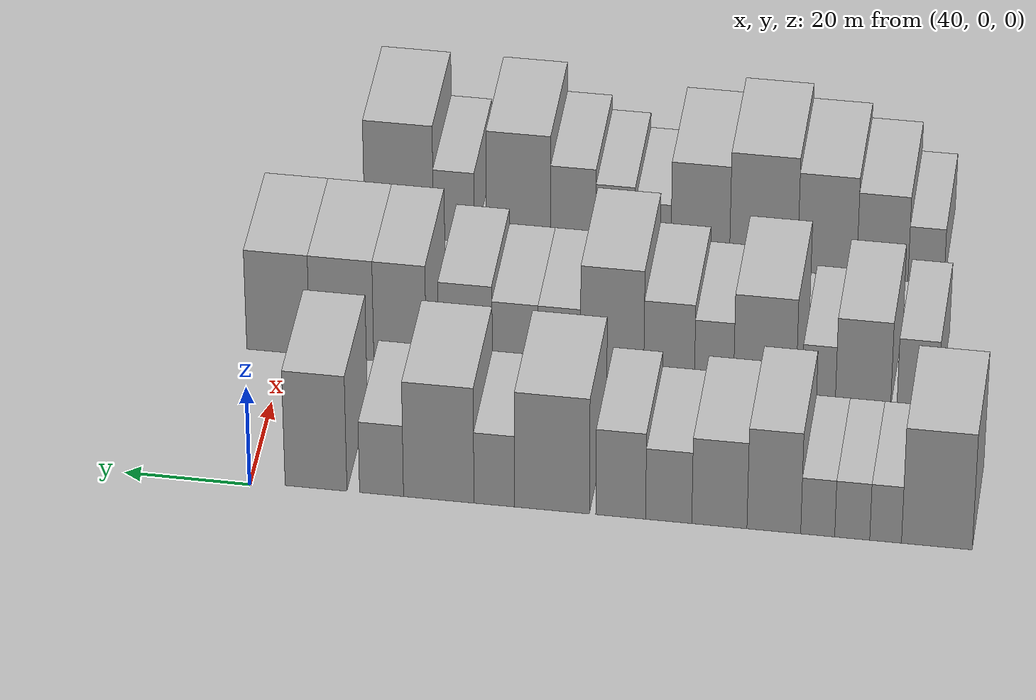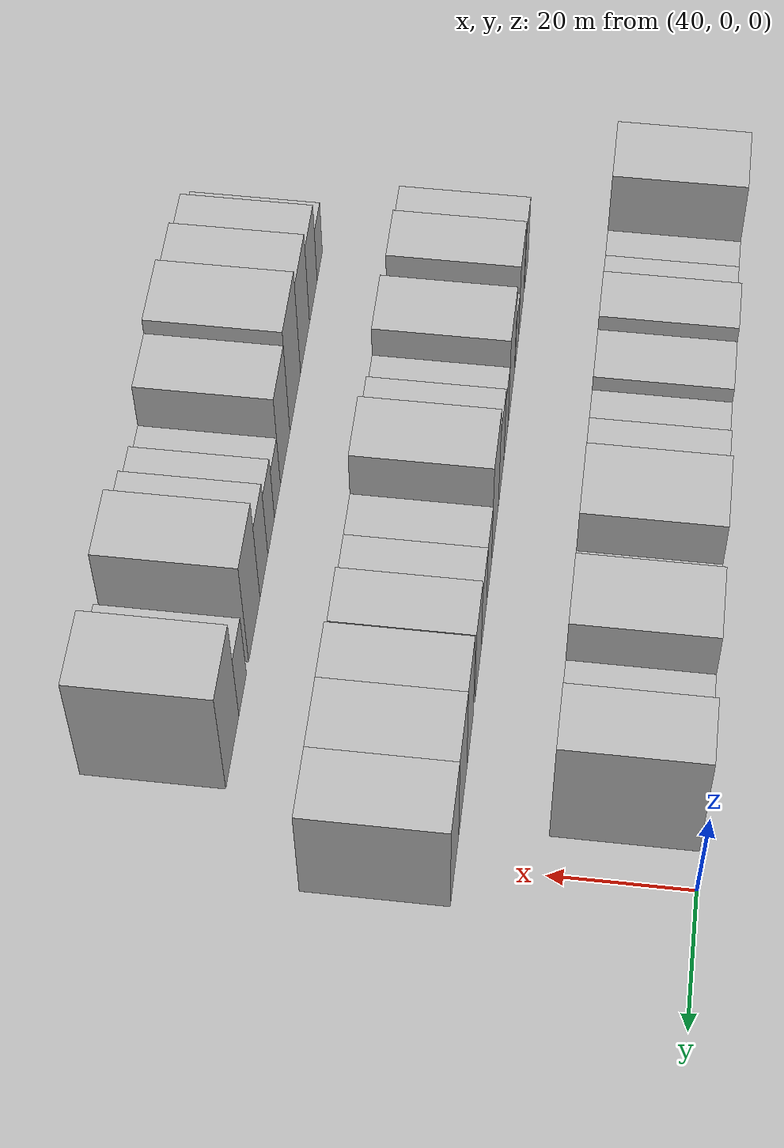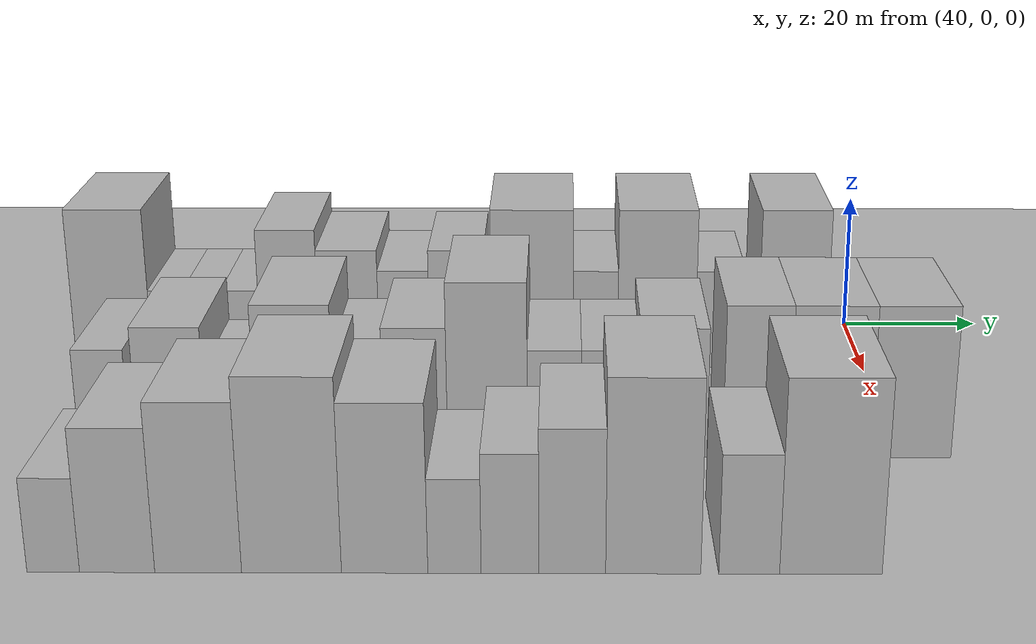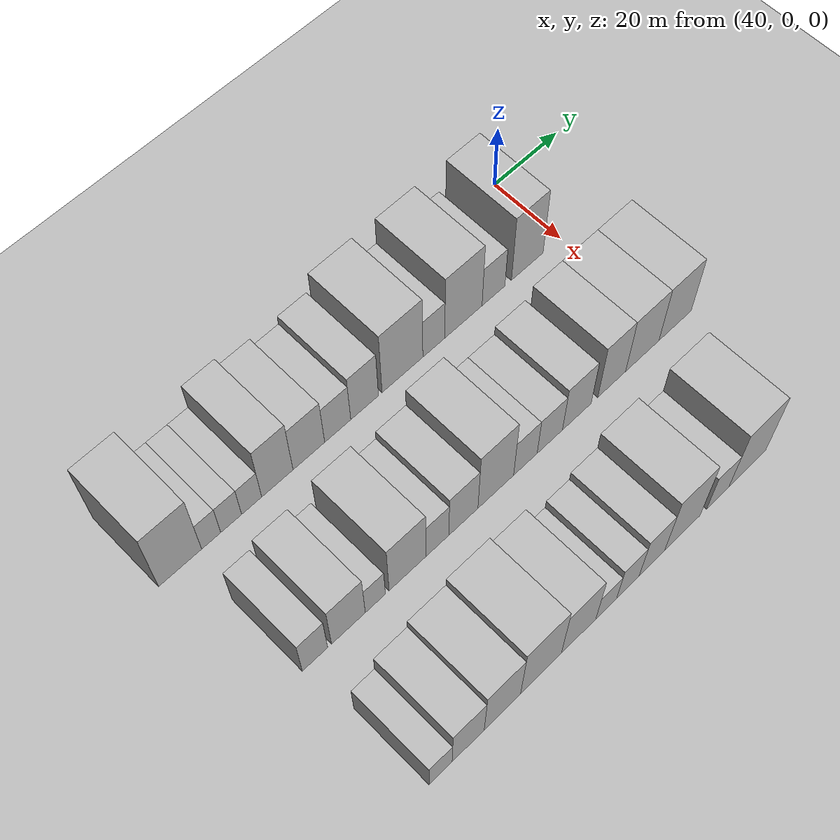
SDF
<sdf version="1.6">
 <world name="default">
  <include><name>ground_plane_1</name><uri>model://HANNAS_ground_plane</uri></include>
  <include>
   <name>ground_plane_2</name>
   <uri>model://HANNAS_ground_plane</uri>
   <pose>100 0 0  0 0 0</pose>
  </include>
  <model name="building_53">
   <static>1</static>
   <pose>50.0000 -108.2480 0 0.000000 0.000000 0.000000</pose>
   <link name="link">
    <pose>0 0 12.00 0 0 0</pose>
    <collision name="collision"><geometry><box><size>20.0000 11.0234 24.0000</size></box></geometry></collision>
    <visual name="visual">
     <cast_shadows>0</cast_shadows>
     <geometry><box><size>20.0000 11.0234 24.0000</size></box></geometry>
     <material>
      <script>
       <uri>model://HANNAS_wall/materials/scripts</uri>
       <uri>model://HANNAS_wall/materials/textures</uri>
       <name>vrc/HANNAS_wall</name>
      </script>
     </material>
    </visual>
   </link>
  </model>
  <model name="building_54">
   <static>1</static>
   <pose>50.0000 -100.2586 0 0.000000 0.000000 0.000000</pose>
   <link name="link">
    <pose>0 0 6.00 0 0 0</pose>
    <collision name="collision"><geometry><box><size>20.0000 4.9554 12.0000</size></box></geometry></collision>
    <visual name="visual">
     <cast_shadows>0</cast_shadows>
     <geometry><box><size>20.0000 4.9554 12.0000</size></box></geometry>
     <material>
      <script>
       <uri>model://HANNAS_wall/materials/scripts</uri>
       <uri>model://HANNAS_wall/materials/textures</uri>
       <name>vrc/HANNAS_wall</name>
      </script>
     </material>
    </visual>
   </link>
  </model>
  <model name="building_55">
   <static>1</static>
   <pose>50.0000 -95.0458 0 0.000000 0.000000 0.000000</pose>
   <link name="link">
    <pose>0 0 6.00 0 0 0</pose>
    <collision name="collision"><geometry><box><size>20.0000 5.4702 12.0000</size></box></geometry></collision>
    <visual name="visual">
     <cast_shadows>0</cast_shadows>
     <geometry><box><size>20.0000 5.4702 12.0000</size></box></geometry>
     <material>
      <script>
       <uri>model://HANNAS_wall/materials/scripts</uri>
       <uri>model://HANNAS_wall/materials/textures</uri>
       <name>vrc/HANNAS_wall</name>
      </script>
     </material>
    </visual>
   </link>
  </model>
  <model name="building_56">
   <static>1</static>
   <pose>50.0000 -89.6483 0 0.000000 0.000000 0.000000</pose>
   <link name="link">
    <pose>0 0 6.00 0 0 0</pose>
    <collision name="collision"><geometry><box><size>20.0000 5.3247 12.0000</size></box></geometry></collision>
    <visual name="visual">
     <cast_shadows>0</cast_shadows>
     <geometry><box><size>20.0000 5.3247 12.0000</size></box></geometry>
     <material>
      <script>
       <uri>model://HANNAS_wall/materials/scripts</uri>
       <uri>model://HANNAS_wall/materials/textures</uri>
       <name>vrc/HANNAS_wall</name>
      </script>
     </material>
    </visual>
   </link>
  </model>
  <model name="building_57">
   <static>1</static>
   <pose>50.0000 -82.7747 0 0.000000 0.000000 0.000000</pose>
   <link name="link">
    <pose>0 0 10.50 0 0 0</pose>
    <collision name="collision"><geometry><box><size>20.0000 8.4225 21.0000</size></box></geometry></collision>
    <visual name="visual">
     <cast_shadows>0</cast_shadows>
     <geometry><box><size>20.0000 8.4225 21.0000</size></box></geometry>
     <material>
      <script>
       <uri>model://HANNAS_wall/materials/scripts</uri>
       <uri>model://HANNAS_wall/materials/textures</uri>
       <name>vrc/HANNAS_wall</name>
      </script>
     </material>
    </visual>
   </link>
  </model>
  <model name="building_58">
   <static>1</static>
   <pose>50.0000 -74.2326 0 0.000000 0.000000 0.000000</pose>
   <link name="link">
    <pose>0 0 9.00 0 0 0</pose>
    <collision name="collision"><geometry><box><size>20.0000 8.6617 18.0000</size></box></geometry></collision>
    <visual name="visual">
     <cast_shadows>0</cast_shadows>
     <geometry><box><size>20.0000 8.6617 18.0000</size></box></geometry>
     <material>
      <script>
       <uri>model://HANNAS_wall/materials/scripts</uri>
       <uri>model://HANNAS_wall/materials/textures</uri>
       <name>vrc/HANNAS_wall</name>
      </script>
     </material>
    </visual>
   </link>
  </model>
  <model name="building_59">
   <static>1</static>
   <pose>50.0000 -66.2687 0 0.000000 0.000000 0.000000</pose>
   <link name="link">
    <pose>0 0 7.50 0 0 0</pose>
    <collision name="collision"><geometry><box><size>20.0000 7.2660 15.0000</size></box></geometry></collision>
    <visual name="visual">
     <cast_shadows>0</cast_shadows>
     <geometry><box><size>20.0000 7.2660 15.0000</size></box></geometry>
     <material>
      <script>
       <uri>model://HANNAS_wall/materials/scripts</uri>
       <uri>model://HANNAS_wall/materials/textures</uri>
       <name>vrc/HANNAS_wall</name>
      </script>
     </material>
    </visual>
   </link>
  </model>
  <model name="building_60">
   <static>1</static>
   <pose>50.0000 -58.7172 0 0.000000 0.000000 0.000000</pose>
   <link name="link">
    <pose>0 0 9.00 0 0 0</pose>
    <collision name="collision"><geometry><box><size>20.0000 7.8371 18.0000</size></box></geometry></collision>
    <visual name="visual">
     <cast_shadows>0</cast_shadows>
     <geometry><box><size>20.0000 7.8371 18.0000</size></box></geometry>
     <material>
      <script>
       <uri>model://HANNAS_wall/materials/scripts</uri>
       <uri>model://HANNAS_wall/materials/textures</uri>
       <name>vrc/HANNAS_wall</name>
      </script>
     </material>
    </visual>
   </link>
  </model>
  <model name="building_61">
   <static>1</static>
   <pose>50.0000 -47.9027 0 0.000000 0.000000 0.000000</pose>
   <link name="link">
    <pose>0 0 12.00 0 0 0</pose>
    <collision name="collision"><geometry><box><size>20.0000 11.7918 24.0000</size></box></geometry></collision>
    <visual name="visual">
     <cast_shadows>0</cast_shadows>
     <geometry><box><size>20.0000 11.7918 24.0000</size></box></geometry>
     <material>
      <script>
       <uri>model://HANNAS_wall/materials/scripts</uri>
       <uri>model://HANNAS_wall/materials/textures</uri>
       <name>vrc/HANNAS_wall</name>
      </script>
     </material>
    </visual>
   </link>
  </model>
  <model name="building_62">
   <static>1</static>
   <pose>50.0000 -38.7945 0 0.000000 0.000000 0.000000</pose>
   <link name="link">
    <pose>0 0 7.50 0 0 0</pose>
    <collision name="collision"><geometry><box><size>20.0000 6.4246 15.0000</size></box></geometry></collision>
    <visual name="visual">
     <cast_shadows>0</cast_shadows>
     <geometry><box><size>20.0000 6.4246 15.0000</size></box></geometry>
     <material>
      <script>
       <uri>model://HANNAS_wall/materials/scripts</uri>
       <uri>model://HANNAS_wall/materials/textures</uri>
       <name>vrc/HANNAS_wall</name>
      </script>
     </material>
    </visual>
   </link>
  </model>
  <model name="building_63">
   <static>1</static>
   <pose>50.0000 -29.9969 0 0.000000 0.000000 0.000000</pose>
   <link name="link">
    <pose>0 0 12.00 0 0 0</pose>
    <collision name="collision"><geometry><box><size>20.0000 11.1705 24.0000</size></box></geometry></collision>
    <visual name="visual">
     <cast_shadows>0</cast_shadows>
     <geometry><box><size>20.0000 11.1705 24.0000</size></box></geometry>
     <material>
      <script>
       <uri>model://HANNAS_wall/materials/scripts</uri>
       <uri>model://HANNAS_wall/materials/textures</uri>
       <name>vrc/HANNAS_wall</name>
      </script>
     </material>
    </visual>
   </link>
  </model>
  <model name="building_64">
   <static>1</static>
   <pose>50.0000 -20.9240 0 0.000000 0.000000 0.000000</pose>
   <link name="link">
    <pose>0 0 7.50 0 0 0</pose>
    <collision name="collision"><geometry><box><size>20.0000 6.9754 15.0000</size></box></geometry></collision>
    <visual name="visual">
     <cast_shadows>0</cast_shadows>
     <geometry><box><size>20.0000 6.9754 15.0000</size></box></geometry>
     <material>
      <script>
       <uri>model://HANNAS_wall/materials/scripts</uri>
       <uri>model://HANNAS_wall/materials/textures</uri>
       <name>vrc/HANNAS_wall</name>
      </script>
     </material>
    </visual>
   </link>
  </model>
  <model name="building_65">
   <static>1</static>
   <pose>50.0000 -10.5199 0 0.000000 0.000000 0.000000</pose>
   <link name="link">
    <pose>0 0 12.00 0 0 0</pose>
    <collision name="collision"><geometry><box><size>20.0000 9.8328 24.0000</size></box></geometry></collision>
    <visual name="visual">
     <cast_shadows>0</cast_shadows>
     <geometry><box><size>20.0000 9.8328 24.0000</size></box></geometry>
     <material>
      <script>
       <uri>model://HANNAS_wall/materials/scripts</uri>
       <uri>model://HANNAS_wall/materials/textures</uri>
       <name>vrc/HANNAS_wall</name>
      </script>
     </material>
    </visual>
   </link>
  </model>
  <model name="building_182">
   <static>1</static>
   <pose>82.0000 -102.0957 0 0.000000 0.000000 0.000000</pose>
   <link name="link">
    <pose>0 0 7.50 0 0 0</pose>
    <collision name="collision"><geometry><box><size>20.0000 6.5473 15.0000</size></box></geometry></collision>
    <visual name="visual">
     <cast_shadows>0</cast_shadows>
     <geometry><box><size>20.0000 6.5473 15.0000</size></box></geometry>
     <material>
      <script>
       <uri>model://HANNAS_wall/materials/scripts</uri>
       <uri>model://HANNAS_wall/materials/textures</uri>
       <name>vrc/HANNAS_wall</name>
      </script>
     </material>
    </visual>
   </link>
  </model>
  <model name="building_183">
   <static>1</static>
   <pose>82.0000 -93.3985 0 0.000000 0.000000 0.000000</pose>
   <link name="link">
    <pose>0 0 9.00 0 0 0</pose>
    <collision name="collision"><geometry><box><size>20.0000 8.8470 18.0000</size></box></geometry></collision>
    <visual name="visual">
     <cast_shadows>0</cast_shadows>
     <geometry><box><size>20.0000 8.8470 18.0000</size></box></geometry>
     <material>
      <script>
       <uri>model://HANNAS_wall/materials/scripts</uri>
       <uri>model://HANNAS_wall/materials/textures</uri>
       <name>vrc/HANNAS_wall</name>
      </script>
     </material>
    </visual>
   </link>
  </model>
  <model name="building_184">
   <static>1</static>
   <pose>82.0000 -86.3039 0 0.000000 0.000000 0.000000</pose>
   <link name="link">
    <pose>0 0 6.00 0 0 0</pose>
    <collision name="collision"><geometry><box><size>20.0000 5.3422 12.0000</size></box></geometry></collision>
    <visual name="visual">
     <cast_shadows>0</cast_shadows>
     <geometry><box><size>20.0000 5.3422 12.0000</size></box></geometry>
     <material>
      <script>
       <uri>model://HANNAS_wall/materials/scripts</uri>
       <uri>model://HANNAS_wall/materials/textures</uri>
       <name>vrc/HANNAS_wall</name>
      </script>
     </material>
    </visual>
   </link>
  </model>
  <model name="building_185">
   <static>1</static>
   <pose>82.0000 -77.6232 0 0.000000 0.000000 0.000000</pose>
   <link name="link">
    <pose>0 0 10.50 0 0 0</pose>
    <collision name="collision"><geometry><box><size>20.0000 10.0193 21.0000</size></box></geometry></collision>
    <visual name="visual">
     <cast_shadows>0</cast_shadows>
     <geometry><box><size>20.0000 10.0193 21.0000</size></box></geometry>
     <material>
      <script>
       <uri>model://HANNAS_wall/materials/scripts</uri>
       <uri>model://HANNAS_wall/materials/textures</uri>
       <name>vrc/HANNAS_wall</name>
      </script>
     </material>
    </visual>
   </link>
  </model>
  <model name="building_186">
   <static>1</static>
   <pose>82.0000 -69.4738 0 0.000000 0.000000 0.000000</pose>
   <link name="link">
    <pose>0 0 7.50 0 0 0</pose>
    <collision name="collision"><geometry><box><size>20.0000 6.2795 15.0000</size></box></geometry></collision>
    <visual name="visual">
     <cast_shadows>0</cast_shadows>
     <geometry><box><size>20.0000 6.2795 15.0000</size></box></geometry>
     <material>
      <script>
       <uri>model://HANNAS_wall/materials/scripts</uri>
       <uri>model://HANNAS_wall/materials/textures</uri>
       <name>vrc/HANNAS_wall</name>
      </script>
     </material>
    </visual>
   </link>
  </model>
  <model name="building_187">
   <static>1</static>
   <pose>82.0000 -62.2552 0 0.000000 0.000000 0.000000</pose>
   <link name="link">
    <pose>0 0 9.00 0 0 0</pose>
    <collision name="collision"><geometry><box><size>20.0000 8.1578 18.0000</size></box></geometry></collision>
    <visual name="visual">
     <cast_shadows>0</cast_shadows>
     <geometry><box><size>20.0000 8.1578 18.0000</size></box></geometry>
     <material>
      <script>
       <uri>model://HANNAS_wall/materials/scripts</uri>
       <uri>model://HANNAS_wall/materials/textures</uri>
       <name>vrc/HANNAS_wall</name>
      </script>
     </material>
    </visual>
   </link>
  </model>
  <model name="building_188">
   <static>1</static>
   <pose>82.0000 -53.0809 0 0.000000 0.000000 0.000000</pose>
   <link name="link">
    <pose>0 0 12.00 0 0 0</pose>
    <collision name="collision"><geometry><box><size>20.0000 10.1907 24.0000</size></box></geometry></collision>
    <visual name="visual">
     <cast_shadows>0</cast_shadows>
     <geometry><box><size>20.0000 10.1907 24.0000</size></box></geometry>
     <material>
      <script>
       <uri>model://HANNAS_wall/materials/scripts</uri>
       <uri>model://HANNAS_wall/materials/textures</uri>
       <name>vrc/HANNAS_wall</name>
      </script>
     </material>
    </visual>
   </link>
  </model>
  <model name="building_189">
   <static>1</static>
   <pose>82.0000 -44.5590 0 0.000000 0.000000 0.000000</pose>
   <link name="link">
    <pose>0 0 7.50 0 0 0</pose>
    <collision name="collision"><geometry><box><size>20.0000 6.8531 15.0000</size></box></geometry></collision>
    <visual name="visual">
     <cast_shadows>0</cast_shadows>
     <geometry><box><size>20.0000 6.8531 15.0000</size></box></geometry>
     <material>
      <script>
       <uri>model://HANNAS_wall/materials/scripts</uri>
       <uri>model://HANNAS_wall/materials/textures</uri>
       <name>vrc/HANNAS_wall</name>
      </script>
     </material>
    </visual>
   </link>
  </model>
  <model name="building_190">
   <static>1</static>
   <pose>82.0000 -37.4028 0 0.000000 0.000000 0.000000</pose>
   <link name="link">
    <pose>0 0 7.50 0 0 0</pose>
    <collision name="collision"><geometry><box><size>20.0000 7.4593 15.0000</size></box></geometry></collision>
    <visual name="visual">
     <cast_shadows>0</cast_shadows>
     <geometry><box><size>20.0000 7.4593 15.0000</size></box></geometry>
     <material>
      <script>
       <uri>model://HANNAS_wall/materials/scripts</uri>
       <uri>model://HANNAS_wall/materials/textures</uri>
       <name>vrc/HANNAS_wall</name>
      </script>
     </material>
    </visual>
   </link>
  </model>
  <model name="building_191">
   <static>1</static>
   <pose>82.0000 -29.3570 0 0.000000 0.000000 0.000000</pose>
   <link name="link">
    <pose>0 0 9.00 0 0 0</pose>
    <collision name="collision"><geometry><box><size>20.0000 8.6322 18.0000</size></box></geometry></collision>
    <visual name="visual">
     <cast_shadows>0</cast_shadows>
     <geometry><box><size>20.0000 8.6322 18.0000</size></box></geometry>
     <material>
      <script>
       <uri>model://HANNAS_wall/materials/scripts</uri>
       <uri>model://HANNAS_wall/materials/textures</uri>
       <name>vrc/HANNAS_wall</name>
      </script>
     </material>
    </visual>
   </link>
  </model>
  <model name="building_192">
   <static>1</static>
   <pose>82.0000 -18.7790 0 0.000000 0.000000 0.000000</pose>
   <link name="link">
    <pose>0 0 10.50 0 0 0</pose>
    <collision name="collision"><geometry><box><size>20.0000 8.5237 21.0000</size></box></geometry></collision>
    <visual name="visual">
     <cast_shadows>0</cast_shadows>
     <geometry><box><size>20.0000 8.5237 21.0000</size></box></geometry>
     <material>
      <script>
       <uri>model://HANNAS_wall/materials/scripts</uri>
       <uri>model://HANNAS_wall/materials/textures</uri>
       <name>vrc/HANNAS_wall</name>
      </script>
     </material>
    </visual>
   </link>
  </model>
  <model name="building_193">
   <static>1</static>
   <pose>82.0000 -9.3183 0 0.000000 0.000000 0.000000</pose>
   <link name="link">
    <pose>0 0 10.50 0 0 0</pose>
    <collision name="collision"><geometry><box><size>20.0000 10.3978 21.0000</size></box></geometry></collision>
    <visual name="visual">
     <cast_shadows>0</cast_shadows>
     <geometry><box><size>20.0000 10.3978 21.0000</size></box></geometry>
     <material>
      <script>
       <uri>model://HANNAS_wall/materials/scripts</uri>
       <uri>model://HANNAS_wall/materials/textures</uri>
       <name>vrc/HANNAS_wall</name>
      </script>
     </material>
    </visual>
   </link>
  </model>
  <model name="building_194">
   <static>1</static>
   <pose>82.0000 1.0268 0 0.000000 0.000000 0.000000</pose>
   <link name="link">
    <pose>0 0 10.50 0 0 0</pose>
    <collision name="collision"><geometry><box><size>20.0000 10.2924 21.0000</size></box></geometry></collision>
    <visual name="visual">
     <cast_shadows>0</cast_shadows>
     <geometry><box><size>20.0000 10.2924 21.0000</size></box></geometry>
     <material>
      <script>
       <uri>model://HANNAS_wall/materials/scripts</uri>
       <uri>model://HANNAS_wall/materials/textures</uri>
       <name>vrc/HANNAS_wall</name>
      </script>
     </material>
    </visual>
   </link>
  </model>
  <model name="building_309">
   <static>1</static>
   <pose>114.0000 -100.3884 0 0.000000 0.000000 0.000000</pose>
   <link name="link">
    <pose>0 0 6.00 0 0 0</pose>
    <collision name="collision"><geometry><box><size>20.0000 5.8942 12.0000</size></box></geometry></collision>
    <visual name="visual">
     <cast_shadows>0</cast_shadows>
     <geometry><box><size>20.0000 5.8942 12.0000</size></box></geometry>
     <material>
      <script>
       <uri>model://HANNAS_wall/materials/scripts</uri>
       <uri>model://HANNAS_wall/materials/textures</uri>
       <name>vrc/HANNAS_wall</name>
      </script>
     </material>
    </visual>
   </link>
  </model>
  <model name="building_310">
   <static>1</static>
   <pose>114.0000 -93.2360 0 0.000000 0.000000 0.000000</pose>
   <link name="link">
    <pose>0 0 9.00 0 0 0</pose>
    <collision name="collision"><geometry><box><size>20.0000 8.4105 18.0000</size></box></geometry></collision>
    <visual name="visual">
     <cast_shadows>0</cast_shadows>
     <geometry><box><size>20.0000 8.4105 18.0000</size></box></geometry>
     <material>
      <script>
       <uri>model://HANNAS_wall/materials/scripts</uri>
       <uri>model://HANNAS_wall/materials/textures</uri>
       <name>vrc/HANNAS_wall</name>
      </script>
     </material>
    </visual>
   </link>
  </model>
  <model name="building_311">
   <static>1</static>
   <pose>114.0000 -84.1753 0 0.000000 0.000000 0.000000</pose>
   <link name="link">
    <pose>0 0 10.50 0 0 0</pose>
    <collision name="collision"><geometry><box><size>20.0000 9.7109 21.0000</size></box></geometry></collision>
    <visual name="visual">
     <cast_shadows>0</cast_shadows>
     <geometry><box><size>20.0000 9.7109 21.0000</size></box></geometry>
     <material>
      <script>
       <uri>model://HANNAS_wall/materials/scripts</uri>
       <uri>model://HANNAS_wall/materials/textures</uri>
       <name>vrc/HANNAS_wall</name>
      </script>
     </material>
    </visual>
   </link>
  </model>
  <model name="building_312">
   <static>1</static>
   <pose>114.0000 -73.7366 0 0.000000 0.000000 0.000000</pose>
   <link name="link">
    <pose>0 0 12.00 0 0 0</pose>
    <collision name="collision"><geometry><box><size>20.0000 11.1665 24.0000</size></box></geometry></collision>
    <visual name="visual">
     <cast_shadows>0</cast_shadows>
     <geometry><box><size>20.0000 11.1665 24.0000</size></box></geometry>
     <material>
      <script>
       <uri>model://HANNAS_wall/materials/scripts</uri>
       <uri>model://HANNAS_wall/materials/textures</uri>
       <name>vrc/HANNAS_wall</name>
      </script>
     </material>
    </visual>
   </link>
  </model>
  <model name="building_313">
   <static>1</static>
   <pose>114.0000 -63.3302 0 0.000000 0.000000 0.000000</pose>
   <link name="link">
    <pose>0 0 10.50 0 0 0</pose>
    <collision name="collision"><geometry><box><size>20.0000 9.6463 21.0000</size></box></geometry></collision>
    <visual name="visual">
     <cast_shadows>0</cast_shadows>
     <geometry><box><size>20.0000 9.6463 21.0000</size></box></geometry>
     <material>
      <script>
       <uri>model://HANNAS_wall/materials/scripts</uri>
       <uri>model://HANNAS_wall/materials/textures</uri>
       <name>vrc/HANNAS_wall</name>
      </script>
     </material>
    </visual>
   </link>
  </model>
  <model name="building_314">
   <static>1</static>
   <pose>114.0000 -55.5286 0 0.000000 0.000000 0.000000</pose>
   <link name="link">
    <pose>0 0 6.00 0 0 0</pose>
    <collision name="collision"><geometry><box><size>20.0000 5.9570 12.0000</size></box></geometry></collision>
    <visual name="visual">
     <cast_shadows>0</cast_shadows>
     <geometry><box><size>20.0000 5.9570 12.0000</size></box></geometry>
     <material>
      <script>
       <uri>model://HANNAS_wall/materials/scripts</uri>
       <uri>model://HANNAS_wall/materials/textures</uri>
       <name>vrc/HANNAS_wall</name>
      </script>
     </material>
    </visual>
   </link>
  </model>
  <model name="building_315">
   <static>1</static>
   <pose>114.0000 -49.3363 0 0.000000 0.000000 0.000000</pose>
   <link name="link">
    <pose>0 0 7.50 0 0 0</pose>
    <collision name="collision"><geometry><box><size>20.0000 6.4277 15.0000</size></box></geometry></collision>
    <visual name="visual">
     <cast_shadows>0</cast_shadows>
     <geometry><box><size>20.0000 6.4277 15.0000</size></box></geometry>
     <material>
      <script>
       <uri>model://HANNAS_wall/materials/scripts</uri>
       <uri>model://HANNAS_wall/materials/textures</uri>
       <name>vrc/HANNAS_wall</name>
      </script>
     </material>
    </visual>
   </link>
  </model>
  <model name="building_316">
   <static>1</static>
   <pose>114.0000 -42.3913 0 0.000000 0.000000 0.000000</pose>
   <link name="link">
    <pose>0 0 9.00 0 0 0</pose>
    <collision name="collision"><geometry><box><size>20.0000 7.4623 18.0000</size></box></geometry></collision>
    <visual name="visual">
     <cast_shadows>0</cast_shadows>
     <geometry><box><size>20.0000 7.4623 18.0000</size></box></geometry>
     <material>
      <script>
       <uri>model://HANNAS_wall/materials/scripts</uri>
       <uri>model://HANNAS_wall/materials/textures</uri>
       <name>vrc/HANNAS_wall</name>
      </script>
     </material>
    </visual>
   </link>
  </model>
  <model name="building_317">
   <static>1</static>
   <pose>114.0000 -33.3519 0 0.000000 0.000000 0.000000</pose>
   <link name="link">
    <pose>0 0 12.00 0 0 0</pose>
    <collision name="collision"><geometry><box><size>20.0000 10.6165 24.0000</size></box></geometry></collision>
    <visual name="visual">
     <cast_shadows>0</cast_shadows>
     <geometry><box><size>20.0000 10.6165 24.0000</size></box></geometry>
     <material>
      <script>
       <uri>model://HANNAS_wall/materials/scripts</uri>
       <uri>model://HANNAS_wall/materials/textures</uri>
       <name>vrc/HANNAS_wall</name>
      </script>
     </material>
    </visual>
   </link>
  </model>
  <model name="building_318">
   <static>1</static>
   <pose>114.0000 -22.6525 0 0.000000 0.000000 0.000000</pose>
   <link name="link">
    <pose>0 0 7.50 0 0 0</pose>
    <collision name="collision"><geometry><box><size>20.0000 6.7824 15.0000</size></box></geometry></collision>
    <visual name="visual">
     <cast_shadows>0</cast_shadows>
     <geometry><box><size>20.0000 6.7824 15.0000</size></box></geometry>
     <material>
      <script>
       <uri>model://HANNAS_wall/materials/scripts</uri>
       <uri>model://HANNAS_wall/materials/textures</uri>
       <name>vrc/HANNAS_wall</name>
      </script>
     </material>
    </visual>
   </link>
  </model>
  <model name="building_319">
   <static>1</static>
   <pose>114.0000 -13.5442 0 0.000000 0.000000 0.000000</pose>
   <link name="link">
    <pose>0 0 12.00 0 0 0</pose>
    <collision name="collision"><geometry><box><size>20.0000 11.4341 24.0000</size></box></geometry></collision>
    <visual name="visual">
     <cast_shadows>0</cast_shadows>
     <geometry><box><size>20.0000 11.4341 24.0000</size></box></geometry>
     <material>
      <script>
       <uri>model://HANNAS_wall/materials/scripts</uri>
       <uri>model://HANNAS_wall/materials/textures</uri>
       <name>vrc/HANNAS_wall</name>
      </script>
     </material>
    </visual>
   </link>
  </model>
 </world>
</sdf>
